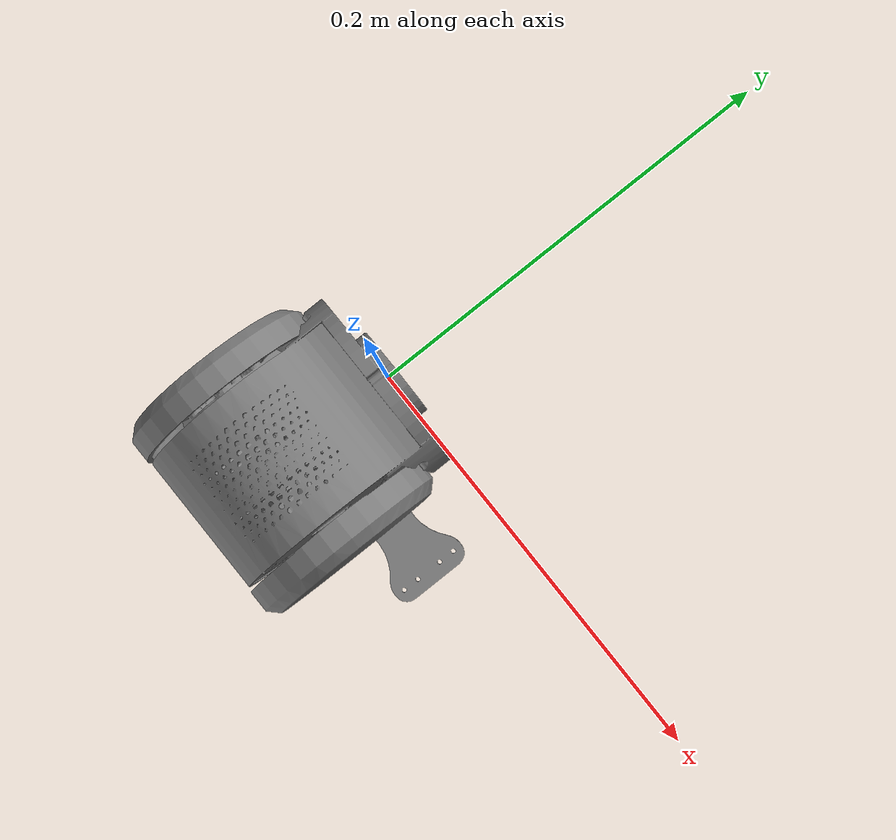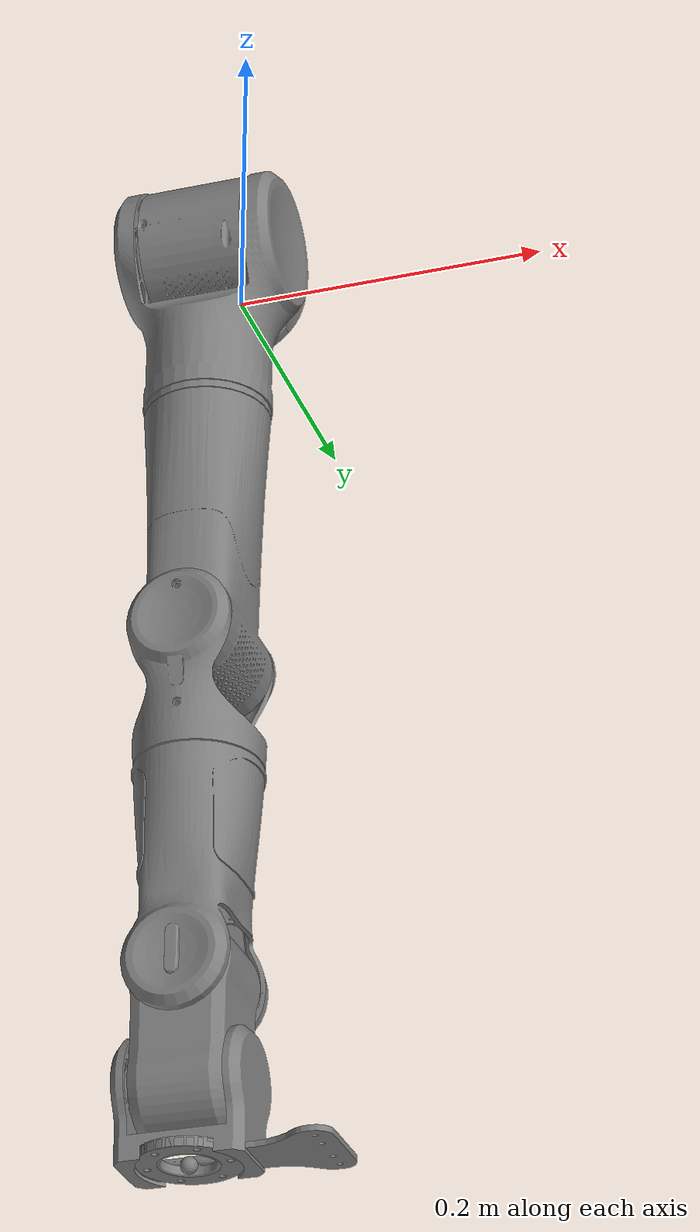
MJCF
<mujoco model="lkls73_arm_right">
  <compiler meshdir="meshes" discardvisual="false" autolimits="true" angle="radian" eulerseq="XYZ"/>
  <option/>

  <default>
    <default class="arm_lkls73_arm_visual">
      <geom type="mesh" contype="0" conaffinity="0" group="1"/>
    </default>
    <default class="arm_lkls73_arm_collision">
      <geom type="mesh" contype="1" conaffinity="1" group="3"/>
    </default>
  </default>

  <asset>
    <mesh name="R1" file="R1_Link.STL"/>
    <mesh name="R2" file="R2_Link.STL"/>
    <mesh name="R3" file="R3_Link.STL"/>
    <mesh name="R4" file="R4_Link.STL"/>
    <mesh name="R5" file="R5_Link.STL"/>
    <mesh name="R6" file="R6_Link.STL"/>
    <mesh name="R7" file="R7_Link.STL"/>
    <mesh name="R8" file="R8_Link.STL"/>
  </asset>

  <worldbody>
    <body name="R_arm_root" pos="0 0 0">
      <site name="base_mount" pos="0 0 0"/>

      <body name="R1_Link" pos="0 0 0">
        <inertial pos="-0.00238919607727967 -0.0538157456440336 0.00010452196048521"
                  mass="1.39972022686362"
                  fullinertia="0.00114445390268402 0.000654874566780468 0.000691494652521253 -2.33503672059843E-06 9.94413679130844E-09 -1.0590763545097E-06"/>
        <joint name="R1_Joint" type="hinge" axis="0 1 0"
               range="-2.91 2.91" damping="20" frictionloss="0.0" armature="0.01"/>
        <geom class="arm_lkls73_arm_visual" mesh="R1"/>
        <geom class="arm_lkls73_arm_collision" mesh="R1"/>

        <body name="R2_Link" pos="-3.32E-05 -0.058001 0">
          <inertial pos="-0.00161840435618426 -8.19852199768212E-06 -0.0795740266968583"
                    mass="1.14210467744301"
                    fullinertia="0.00099926032712546 0.000929597930299551 0.000490873969400915 4.38390428673455E-06 1.34112399215467E-06 -2.7915125849712E-07"/>
          <joint name="R2_Joint" type="hinge" axis="-1 0 0"
                 range="-0.07 3.2" damping="20" frictionloss="0.0" armature="0.01"/>
          <geom class="arm_lkls73_arm_visual" mesh="R2"/>
          <geom class="arm_lkls73_arm_collision" mesh="R2"/>

          <body name="R3_Link" pos="2.5018E-05 0 -0.123">
            <inertial pos="-0.000181281046893987 -0.00124930020984915 -0.128548942421424"
                      mass="1.27984352653686"
                      fullinertia="0.00158095142360156 0.00163152744277086 0.000344148863355523 7.74064683830126E-07 8.68119825601561E-07 2.41539423740222E-06"/>
            <joint name="R3_Joint" type="hinge" axis="0 0 1"
                   range="-2.69 2.69" damping="20" frictionloss="0.0" armature="0.01"/>
            <geom class="arm_lkls73_arm_visual" mesh="R3"/>
            <geom class="arm_lkls73_arm_collision" mesh="R3"/>

            <body name="R4_Link" pos="-2.5308E-05 0 -0.1621">
              <inertial pos="4.42383386005531E-06 -0.000778418113624724 -0.0846001182728231"
                        mass="0.935504488206621"
                        fullinertia="0.00050824600575807 0.000524130564978714 0.000333983373234424 -4.12349458829714E-06 1.60122816329668E-07 3.4575721962879E-07"/>
              <joint name="R4_Joint" type="hinge" axis="0 1 0"
                     range="-2.05 2.05" damping="20" frictionloss="0.0" armature="0.01"/>
              <geom class="arm_lkls73_arm_visual" mesh="R4"/>
              <geom class="arm_lkls73_arm_collision" mesh="R4"/>

              <body name="R5_Link" pos="0 0 -0.124">
                <inertial pos="7.89161129038714E-05 -0.00127720103461224 -0.0361226257678754"
                          mass="0.298013716041534"
                          fullinertia="0.000356325710016729 0.000385006832605378 0.000101746689163179 8.49345579615723E-07 1.06208408022809E-06 -2.16308499009301E-06"/>
                <joint name="R5_Joint" type="hinge" axis="0 0 1"
                       range="-2.69 2.69" damping="20" frictionloss="0.0" armature="0.01"/>
                <geom class="arm_lkls73_arm_visual" mesh="R5"/>
                <geom class="arm_lkls73_arm_collision" mesh="R5"/>

                <body name="R6_Link" pos="0 0 -0.0881">
                  <inertial pos="-0.00423362800835291 0.00438647668797748 -0.0324823687491156"
                            mass="0.344326135276304"
                            fullinertia="0.000194396918256628 0.000233882313857475 0.00010145861997438 1.34060453386023E-06 -9.47065531650411E-06 -2.86903332334497E-07"/>
                  <joint name="R6_Joint" type="hinge" axis="0 1 0"
                         range="-1.59 1.59" damping="20" frictionloss="0.0" armature="0.01"/>
                  <geom class="arm_lkls73_arm_visual" mesh="R6"/>
                  <geom class="arm_lkls73_arm_collision" mesh="R6"/>

                  <body name="R7_Link" pos="2.5631E-05 0 -0.0655">
                    <inertial pos="0.00330667550394679 -1.18809317478652E-06 -0.0202430179967651"
                              mass="0.143310943627727"
                              fullinertia="6.98168229201036E-05 5.48675476764227E-05 4.4020607930099E-05 2.70503363330993E-07 3.17975733407385E-08 -1.01361997649667E-12"/>
                    <joint name="R7_Joint" type="hinge" axis="-1 0 0"
                           range="-1.59 1.59" damping="20" frictionloss="0.0" armature="0.01"/>
                    <geom class="arm_lkls73_arm_visual" mesh="R7"/>
                    <geom class="arm_lkls73_arm_collision" mesh="R7"/>

                    <body name="R8_Link" pos="-2.5732E-05 0 -0.0455">
                      <inertial pos="-1.03808180585258E-10 5.33808552916071E-11 0.000499999999999834"
                                mass="6.05149284897743E-05"
                                fullinertia="8.49604381443613E-09 8.49604381442903E-09 1.69820018074356E-08 8.31967629121856E-22 7.81277954468574E-15 9.03653481925555E-16"/>
                      <geom class="arm_lkls73_arm_visual" mesh="R8"/>
                      <geom class="arm_lkls73_arm_collision" mesh="R8"/>
                      <site name="tool0" pos="0 0 0"/>
                    </body>
                  </body>
                </body>
              </body>
            </body>
          </body>
        </body>
      </body>
    </body>
  </worldbody>

  <actuator>
    <position name="R1_Joint_act" joint="R1_Joint" kp="2000" kv="0" ctrlrange="-2.91 2.91"/>
    <position name="R2_Joint_act" joint="R2_Joint" kp="2000" kv="0" ctrlrange="-0.07 3.2"/>
    <position name="R3_Joint_act" joint="R3_Joint" kp="2000" kv="0" ctrlrange="-2.69 2.69"/>
    <position name="R4_Joint_act" joint="R4_Joint" kp="2000" kv="0" ctrlrange="-2.05 2.05"/>
    <position name="R5_Joint_act" joint="R5_Joint" kp="2000" kv="0" ctrlrange="-2.69 2.69"/>
    <position name="R6_Joint_act" joint="R6_Joint" kp="2000" kv="0" ctrlrange="-1.59 1.59"/>
    <position name="R7_Joint_act" joint="R7_Joint" kp="2000" kv="0" ctrlrange="-1.59 1.59"/>
  </actuator>

  <contact>
    <exclude body1="R1_Link" body2="R2_Link"/>
    <exclude body1="R2_Link" body2="R3_Link"/>
    <exclude body1="R3_Link" body2="R4_Link"/>
    <exclude body1="R4_Link" body2="R5_Link"/>
    <exclude body1="R5_Link" body2="R6_Link"/>
    <exclude body1="R6_Link" body2="R7_Link"/>
    <exclude body1="R7_Link" body2="R8_Link"/>
  </contact>
</mujoco>
